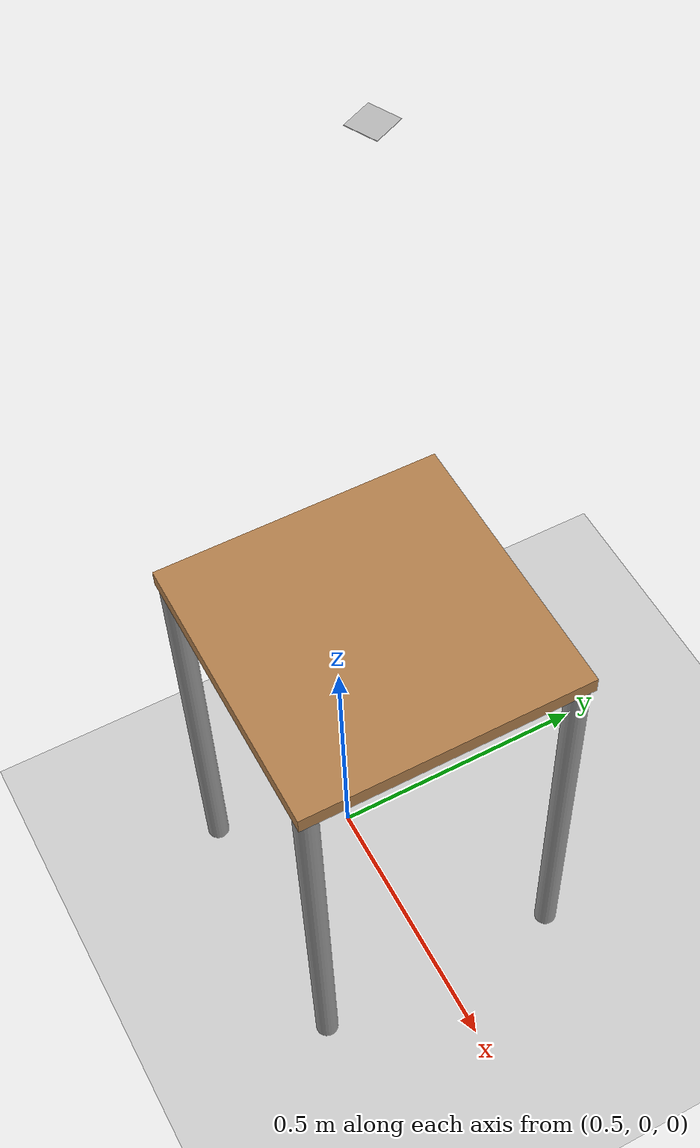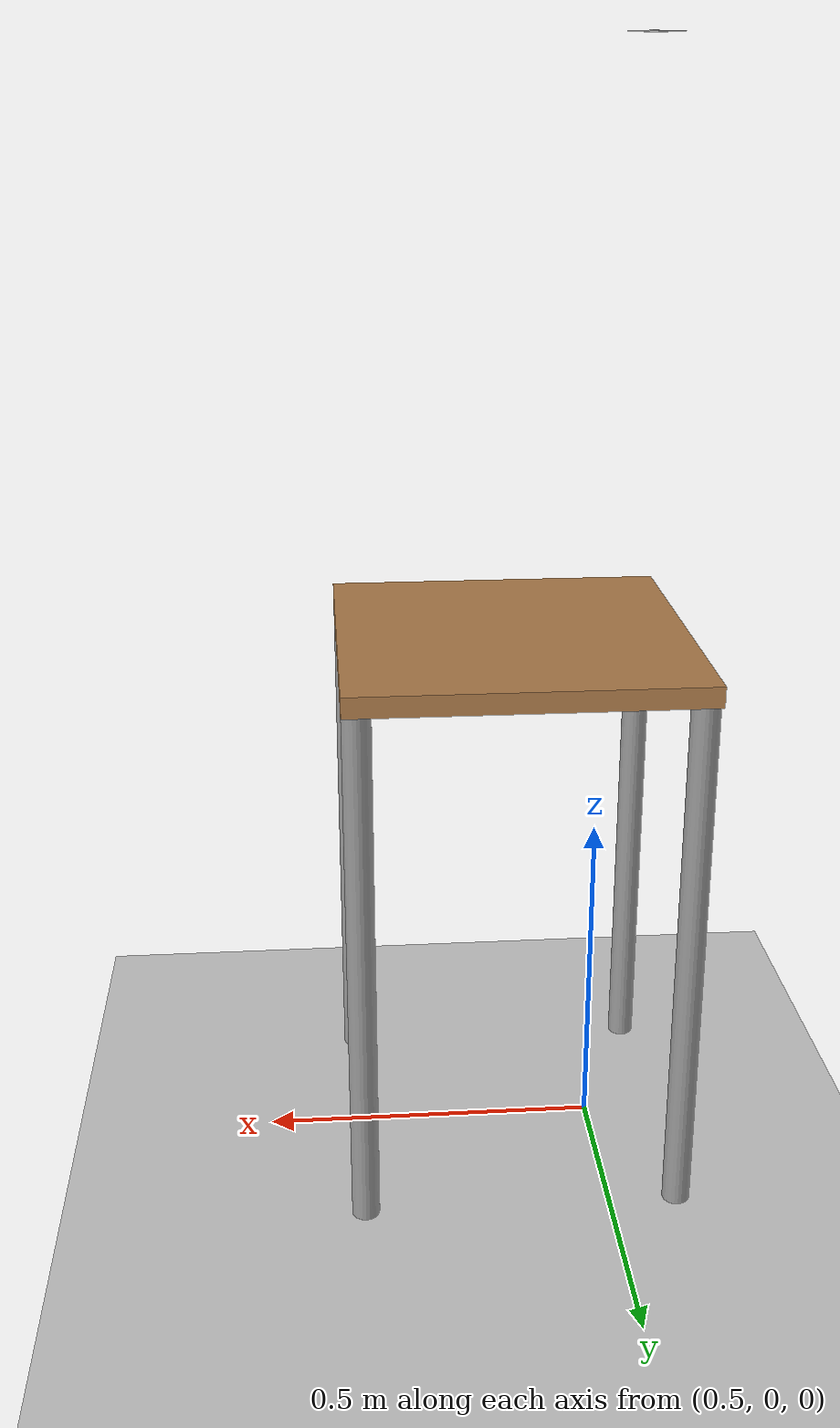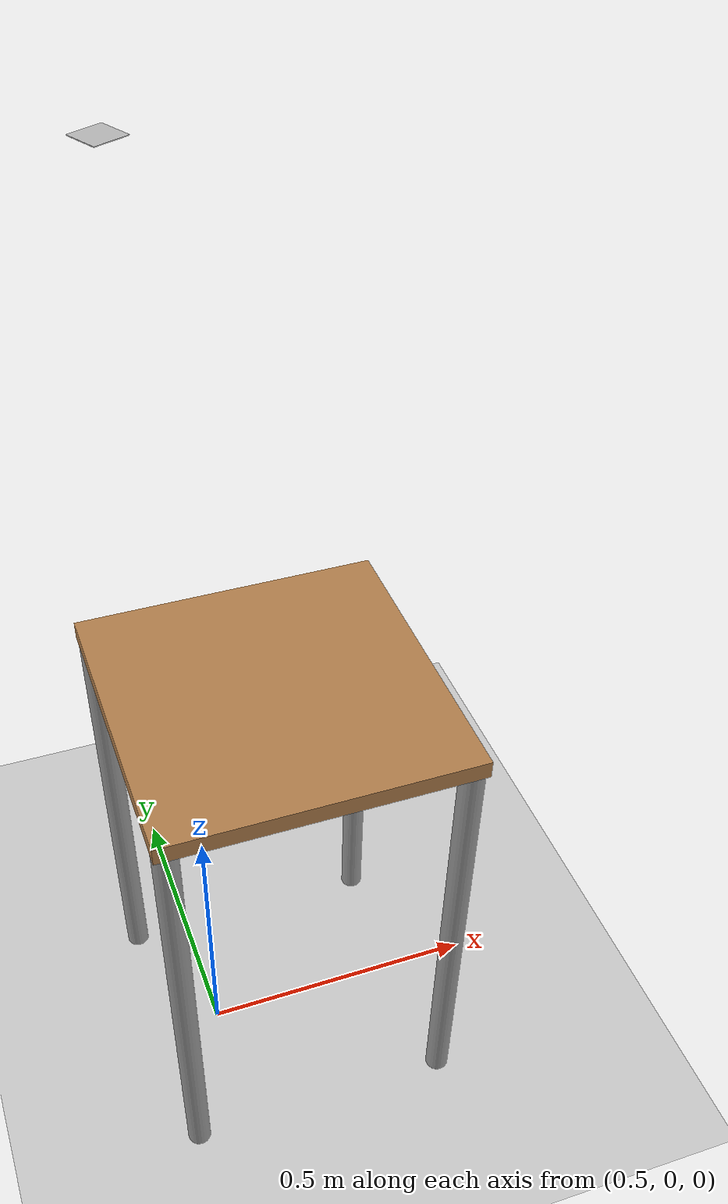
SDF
<sdf version="1.4">
 <world name="default">
  <physics type="ode">
   <gravity>0 0 -9.81</gravity>
   <ode>
    <solver><type>quick</type><iters>20</iters><sor>1.0</sor></solver>
    <constraints>
     <cfm>0.0</cfm>
     <erp>0.2</erp>
     <contact_max_correcting_vel>100.0</contact_max_correcting_vel>
     <contact_surface_layer>0.0</contact_surface_layer>
    </constraints>
   </ode>
   <real_time_update_rate>1000</real_time_update_rate>
   <max_step_size>0.001</max_step_size>
  </physics>
  <light type="directional" name="light1">
   <pose>-2 0 4 0 0 0</pose>
   <diffuse>1.0 1.0 1.0 1</diffuse>
   <specular>0.1 0.1 0.1 1</specular>
   <attenuation>
    <range>20</range>
    <constant>0.9</constant>
    <linear>0.01</linear>
    <quadratic>0.001</quadratic>
   </attenuation>
   <direction>0.2 0.0 -1.0</direction>
  </light>
  <include><uri>model://ground_plane</uri></include>
  <include><uri>model://table1</uri><name>table1</name><pose>0.88 0 0 0 0 0</pose></include>
  <include><uri>model://aruco_place</uri><pose>0.48 0.1 1.6 0 0 0.45</pose></include>
 </world>
</sdf>

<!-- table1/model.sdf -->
<sdf version='1.6'>
  <model name='table1'>
    <link name='link'>
      <velocity_decay>
        <linear>0</linear>
        <angular>0</angular>
      </velocity_decay>
      <self_collide>0</self_collide>
      <kinematic>0</kinematic>
      <gravity>1</gravity>
      <enable_wind>0</enable_wind>
      <pose frame=''>0 0 0 0 -0 0</pose>
      <inertial>
        <mass>1</mass>
        <pose frame=''>0 0 0 0 -0 0</pose>
        <inertia>
          <ixx>1</ixx>
          <ixy>0</ixy>
          <ixz>0</ixz>
          <iyy>1</iyy>
          <iyz>0</iyz>
          <izz>1</izz>
        </inertia>
      </inertial>
      <visual name='visual1'>
        <pose frame=''>-0.25 0 0.8 0 -0 0</pose>
        <geometry>
          <box>
            <size>0.5 0.5 0.03</size>
          </box>
        </geometry>
        <material>
          <script>
            <uri>file://media/materials/scripts/gazebo.material</uri>
            <name>Gazebo/Wood</name>
          </script>
          <shader type='vertex'>
            <normal_map>__default__</normal_map>
          </shader>
          <ambient>1 1 1 1</ambient>
          <diffuse>1 1 1 1</diffuse>
          <specular>0.2 0.2 0.2 1</specular>
          <emissive>0 0 0 1</emissive>
        </material>
        <transparency>0</transparency>
        <cast_shadows>1</cast_shadows>
      </visual>
      <visual name='front_left_leg'>
        <pose frame=''>-0.02 0.23 0.4 0 -0 0</pose>
        <geometry>
          <cylinder>
            <radius>0.02</radius>
            <length>0.8</length>
          </cylinder>
        </geometry>
        <material>
          <script>
            <uri>file://media/materials/scripts/gazebo.material</uri>
            <name>Gazebo/Grey</name>
          </script>
          <shader type='vertex'>
            <normal_map>__default__</normal_map>
          </shader>
          <ambient>0.3 0.3 0.3 1</ambient>
          <diffuse>0.7 0.7 0.7 1</diffuse>
          <specular>0.01 0.01 0.01 1</specular>
          <emissive>0 0 0 1</emissive>
        </material>
        <transparency>0</transparency>
        <cast_shadows>1</cast_shadows>
      </visual>
      <visual name='front_right_leg'>
        <pose frame=''>-0.02 -0.23 0.4 0 -0 0</pose>
        <geometry>
          <cylinder>
            <radius>0.02</radius>
            <length>0.8</length>
          </cylinder>
        </geometry>
        <material>
          <script>
            <uri>file://media/materials/scripts/gazebo.material</uri>
            <name>Gazebo/Grey</name>
          </script>
          <shader type='vertex'>
            <normal_map>__default__</normal_map>
          </shader>
          <ambient>0.3 0.3 0.3 1</ambient>
          <diffuse>0.7 0.7 0.7 1</diffuse>
          <specular>0.01 0.01 0.01 1</specular>
          <emissive>0 0 0 1</emissive>
        </material>
        <transparency>0</transparency>
        <cast_shadows>1</cast_shadows>
      </visual>
      <visual name='back_right_leg'>
        <pose frame=''>-0.48 -0.23 0.4 0 -0 0</pose>
        <geometry>
          <cylinder>
            <radius>0.02</radius>
            <length>0.8</length>
          </cylinder>
        </geometry>
        <material>
          <script>
            <uri>file://media/materials/scripts/gazebo.material</uri>
            <name>Gazebo/Grey</name>
          </script>
          <shader type='vertex'>
            <normal_map>__default__</normal_map>
          </shader>
          <ambient>0.3 0.3 0.3 1</ambient>
          <diffuse>0.7 0.7 0.7 1</diffuse>
          <specular>0.01 0.01 0.01 1</specular>
          <emissive>0 0 0 1</emissive>
        </material>
        <transparency>0</transparency>
        <cast_shadows>1</cast_shadows>
      </visual>
      <visual name='back_left_leg'>
        <pose frame=''>-0.48 0.23 0.4 0 -0 0</pose>
        <geometry>
          <cylinder>
            <radius>0.02</radius>
            <length>0.8</length>
          </cylinder>
        </geometry>
        <material>
          <script>
            <uri>file://media/materials/scripts/gazebo.material</uri>
            <name>Gazebo/Grey</name>
          </script>
          <shader type='vertex'>
            <normal_map>__default__</normal_map>
          </shader>
          <ambient>0.3 0.3 0.3 1</ambient>
          <diffuse>0.7 0.7 0.7 1</diffuse>
          <specular>0.01 0.01 0.01 1</specular>
          <emissive>0 0 0 1</emissive>
        </material>
        <transparency>0</transparency>
        <cast_shadows>1</cast_shadows>
      </visual>
      <collision name='surface'>
        <laser_retro>0</laser_retro>
        <max_contacts>10</max_contacts>
        <pose frame=''>-0.25 0 0.8 0 -0 0</pose>
        <geometry>
          <box>
            <size>0.5 0.5 0.03</size>
          </box>
        </geometry>
        <surface>
          <friction>
            <ode>
              <mu>1</mu>
              <mu2>1</mu2>
              <fdir1>0 0 0</fdir1>
              <slip1>0</slip1>
              <slip2>0</slip2>
            </ode>
            <torsional>
              <coefficient>1</coefficient>
              <patch_radius>0</patch_radius>
              <surface_radius>0</surface_radius>
              <use_patch_radius>1</use_patch_radius>
              <ode>
                <slip>0</slip>
              </ode>
            </torsional>
          </friction>
          <bounce>
            <restitution_coefficient>0</restitution_coefficient>
            <threshold>1e+06</threshold>
          </bounce>
          <contact>
            <collide_without_contact>0</collide_without_contact>
            <collide_without_contact_bitmask>1</collide_without_contact_bitmask>
            <collide_bitmask>1</collide_bitmask>
            <ode>
              <soft_cfm>0</soft_cfm>
              <soft_erp>0.2</soft_erp>
              <kp>1e+13</kp>
              <kd>1</kd>
              <max_vel>0.01</max_vel>
              <min_depth>0</min_depth>
            </ode>
            <bullet>
              <split_impulse>1</split_impulse>
              <split_impulse_penetration_threshold>-0.01</split_impulse_penetration_threshold>
              <soft_cfm>0</soft_cfm>
              <soft_erp>0.2</soft_erp>
              <kp>1e+13</kp>
              <kd>1</kd>
            </bullet>
          </contact>
        </surface>
      </collision>
      <collision name='front_left_leg'>
        <laser_retro>0</laser_retro>
        <max_contacts>10</max_contacts>
        <pose frame=''>-0.02 0.23 0.4 0 -0 0</pose>
        <geometry>
          <cylinder>
            <radius>0.02</radius>
            <length>0.8</length>
          </cylinder>
        </geometry>
        <surface>
          <friction>
            <ode>
              <mu>1</mu>
              <mu2>1</mu2>
              <fdir1>0 0 0</fdir1>
              <slip1>0</slip1>
              <slip2>0</slip2>
            </ode>
            <torsional>
              <coefficient>1</coefficient>
              <patch_radius>0</patch_radius>
              <surface_radius>0</surface_radius>
              <use_patch_radius>1</use_patch_radius>
              <ode>
                <slip>0</slip>
              </ode>
            </torsional>
          </friction>
          <bounce>
            <restitution_coefficient>0</restitution_coefficient>
            <threshold>1e+06</threshold>
          </bounce>
          <contact>
            <collide_without_contact>0</collide_without_contact>
            <collide_without_contact_bitmask>1</collide_without_contact_bitmask>
            <collide_bitmask>1</collide_bitmask>
            <ode>
              <soft_cfm>0</soft_cfm>
              <soft_erp>0.2</soft_erp>
              <kp>1e+13</kp>
              <kd>1</kd>
              <max_vel>0.01</max_vel>
              <min_depth>0</min_depth>
            </ode>
            <bullet>
              <split_impulse>1</split_impulse>
              <split_impulse_penetration_threshold>-0.01</split_impulse_penetration_threshold>
              <soft_cfm>0</soft_cfm>
              <soft_erp>0.2</soft_erp>
              <kp>1e+13</kp>
              <kd>1</kd>
            </bullet>
          </contact>
        </surface>
      </collision>
      <collision name='front_right_leg'>
        <laser_retro>0</laser_retro>
        <max_contacts>10</max_contacts>
        <pose frame=''>-0.02 -0.23 0.4 0 -0 0</pose>
        <geometry>
          <cylinder>
            <radius>0.02</radius>
            <length>0.8</length>
          </cylinder>
        </geometry>
        <surface>
          <friction>
            <ode>
              <mu>1</mu>
              <mu2>1</mu2>
              <fdir1>0 0 0</fdir1>
              <slip1>0</slip1>
              <slip2>0</slip2>
            </ode>
            <torsional>
              <coefficient>1</coefficient>
              <patch_radius>0</patch_radius>
              <surface_radius>0</surface_radius>
              <use_patch_radius>1</use_patch_radius>
              <ode>
                <slip>0</slip>
              </ode>
            </torsional>
          </friction>
          <bounce>
            <restitution_coefficient>0</restitution_coefficient>
            <threshold>1e+06</threshold>
          </bounce>
          <contact>
            <collide_without_contact>0</collide_without_contact>
            <collide_without_contact_bitmask>1</collide_without_contact_bitmask>
            <collide_bitmask>1</collide_bitmask>
            <ode>
              <soft_cfm>0</soft_cfm>
              <soft_erp>0.2</soft_erp>
              <kp>1e+13</kp>
              <kd>1</kd>
              <max_vel>0.01</max_vel>
              <min_depth>0</min_depth>
            </ode>
            <bullet>
              <split_impulse>1</split_impulse>
              <split_impulse_penetration_threshold>-0.01</split_impulse_penetration_threshold>
              <soft_cfm>0</soft_cfm>
              <soft_erp>0.2</soft_erp>
              <kp>1e+13</kp>
              <kd>1</kd>
            </bullet>
          </contact>
        </surface>
      </collision>
      <collision name='back_right_leg'>
        <laser_retro>0</laser_retro>
        <max_contacts>10</max_contacts>
        <pose frame=''>-0.48 -0.23 0.4 0 -0 0</pose>
        <geometry>
          <cylinder>
            <radius>0.02</radius>
            <length>0.8</length>
          </cylinder>
        </geometry>
        <surface>
          <friction>
            <ode>
              <mu>1</mu>
              <mu2>1</mu2>
              <fdir1>0 0 0</fdir1>
              <slip1>0</slip1>
              <slip2>0</slip2>
            </ode>
            <torsional>
              <coefficient>1</coefficient>
              <patch_radius>0</patch_radius>
              <surface_radius>0</surface_radius>
              <use_patch_radius>1</use_patch_radius>
              <ode>
                <slip>0</slip>
              </ode>
            </torsional>
          </friction>
          <bounce>
            <restitution_coefficient>0</restitution_coefficient>
            <threshold>1e+06</threshold>
          </bounce>
          <contact>
            <collide_without_contact>0</collide_without_contact>
            <collide_without_contact_bitmask>1</collide_without_contact_bitmask>
            <collide_bitmask>1</collide_bitmask>
            <ode>
              <soft_cfm>0</soft_cfm>
              <soft_erp>0.2</soft_erp>
              <kp>1e+13</kp>
              <kd>1</kd>
              <max_vel>0.01</max_vel>
              <min_depth>0</min_depth>
            </ode>
            <bullet>
              <split_impulse>1</split_impulse>
              <split_impulse_penetration_threshold>-0.01</split_impulse_penetration_threshold>
              <soft_cfm>0</soft_cfm>
              <soft_erp>0.2</soft_erp>
              <kp>1e+13</kp>
              <kd>1</kd>
            </bullet>
          </contact>
        </surface>
      </collision>
      <collision name='back_left_leg'>
        <laser_retro>0</laser_retro>
        <max_contacts>10</max_contacts>
        <pose frame=''>-0.48 0.23 0.4 0 -0 0</pose>
        <geometry>
          <cylinder>
            <radius>0.02</radius>
            <length>0.8</length>
          </cylinder>
        </geometry>
        <surface>
          <friction>
            <ode>
              <mu>1</mu>
              <mu2>1</mu2>
              <fdir1>0 0 0</fdir1>
              <slip1>0</slip1>
              <slip2>0</slip2>
            </ode>
            <torsional>
              <coefficient>1</coefficient>
              <patch_radius>0</patch_radius>
              <surface_radius>0</surface_radius>
              <use_patch_radius>1</use_patch_radius>
              <ode>
                <slip>0</slip>
              </ode>
            </torsional>
          </friction>
          <bounce>
            <restitution_coefficient>0</restitution_coefficient>
            <threshold>1e+06</threshold>
          </bounce>
          <contact>
            <collide_without_contact>0</collide_without_contact>
            <collide_without_contact_bitmask>1</collide_without_contact_bitmask>
            <collide_bitmask>1</collide_bitmask>
            <ode>
              <soft_cfm>0</soft_cfm>
              <soft_erp>0.2</soft_erp>
              <kp>1e+13</kp>
              <kd>1</kd>
              <max_vel>0.01</max_vel>
              <min_depth>0</min_depth>
            </ode>
            <bullet>
              <split_impulse>1</split_impulse>
              <split_impulse_penetration_threshold>-0.01</split_impulse_penetration_threshold>
              <soft_cfm>0</soft_cfm>
              <soft_erp>0.2</soft_erp>
              <kp>1e+13</kp>
              <kd>1</kd>
            </bullet>
          </contact>
        </surface>
      </collision>
    </link>
    <static>1</static>
    <allow_auto_disable>1</allow_auto_disable>
  </model>
</sdf>

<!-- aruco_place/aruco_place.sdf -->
<sdf version="1.4">
  <model name="aruco_place">
    <static>0</static>
    <link name="link">

      <inertial>
        <mass>0.05</mass>
        <inertia>
          <ixx>0.000052083</ixx>
          <ixy>0.0</ixy>
          <ixz>0.0</ixz>
          <iyy>0.000052083</iyy>
          <iyz>0.0</iyz>
          <izz>0.000020833</izz>
        </inertia>
      </inertial>

      <collision name="colision">
        <pose>0 0 0 0 0 0</pose>
          <geometry>
            <box>
              <size>0.05 0.05 0.0025</size>
            </box>
          </geometry>
        <surface>
          <friction>
            <ode>
              <mu>30.0</mu>
              <mu2>30.0</mu2>
              <fdir1>0 0 0</fdir1>
            </ode>
          </friction>
          <contact>
            <ode>
              <kp>1000000.0</kp>
              <kd>100.0</kd>
              <min_depth>0.0025</min_depth>
              <max_vel>1.0</max_vel>
            </ode>
          </contact>
        </surface>
      </collision>

      <visual name="visual1">
        <pose>0 0 0 0 0 0</pose>
        <geometry>
          <mesh>
            <uri>model://aruco_place/meshes/aruco-666.dae</uri>
	    <scale> 1 1 2 </scale>
          </mesh>
        </geometry>
      </visual>

      <velocity_decay>
        <linear>0.000000</linear>
        <angular>0.000000</angular>
      </velocity_decay>
      <self_collide>0</self_collide>
      <kinematic>0</kinematic>
      <gravity>1</gravity>
    </link>
  </model>
</sdf>
